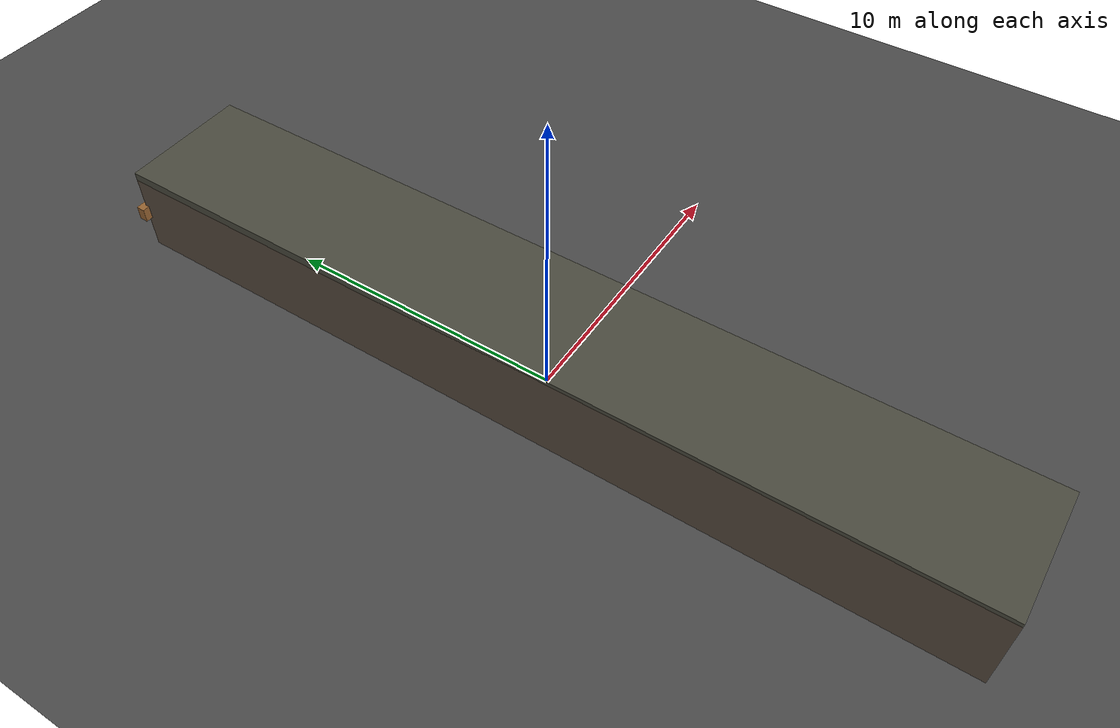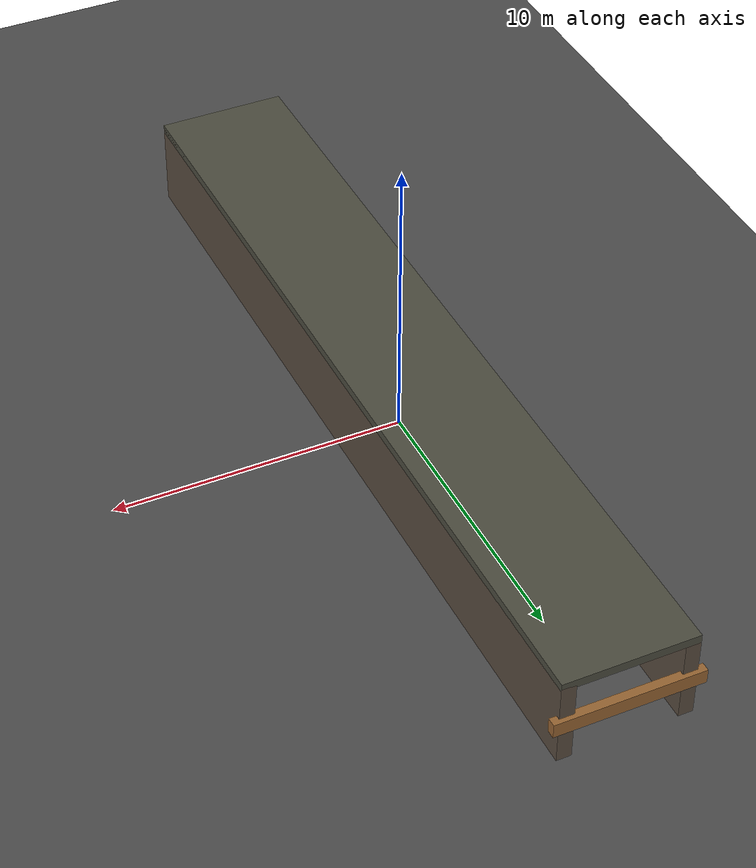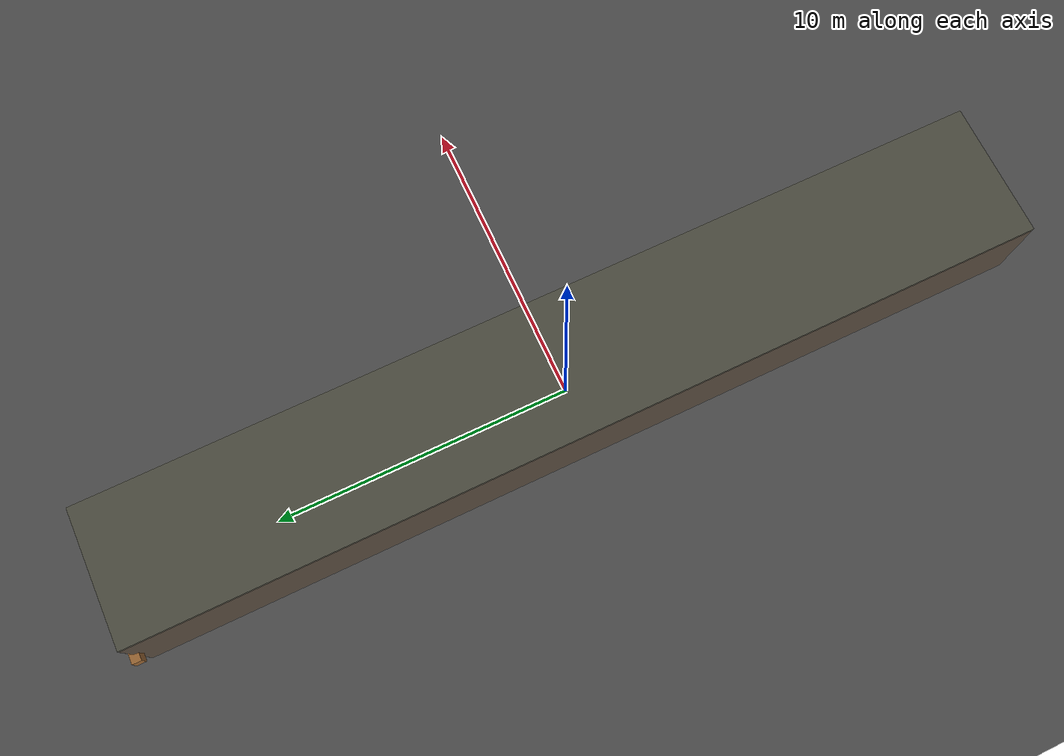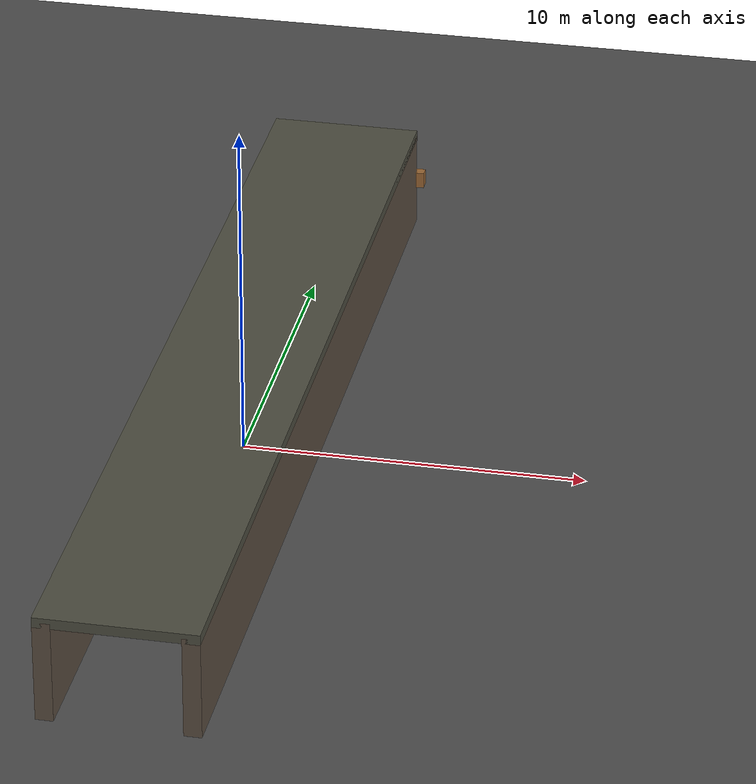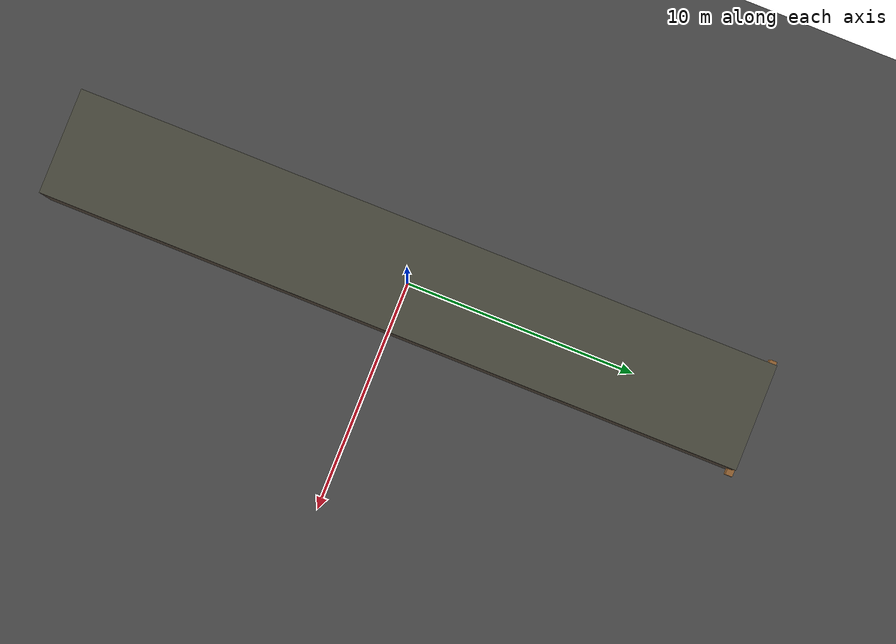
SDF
<?xml version="1.0" ?>
<sdf version="1.7">
  <world name="andino_tunnel">
    <physics name="default" type="ode">
      <gravity>0 0 -9.81</gravity>
      <real_time_update_rate>250</real_time_update_rate>
      <max_step_size>0.004</max_step_size>
    </physics>

    <scene>
      <ambient>0.15 0.15 0.18 1</ambient>
      <background>0.1 0.1 0.15 1</background>
      <shadows>true</shadows>
    </scene>

    <!-- Dim directional light (simulating underground) -->
    <light name="sun" type="directional">
      <cast_shadows>true</cast_shadows>
      <pose>0 0 50 0 0 0</pose>
      <diffuse>0.3 0.3 0.25 1</diffuse>
      <specular>0.1 0.1 0.1 1</specular>
      <direction>0 0 -1</direction>
    </light>

    <!-- Floor -->
    <model name="ground_plane">
      <static>true</static>
      <link name="link">
        <collision name="collision">
          <geometry><plane><normal>0 0 1</normal><size>100 100</size></plane></geometry>
          <surface>
            <friction>
              <ode><mu>0.9</mu><mu2>0.7</mu2></ode>
            </friction>
          </surface>
        </collision>
        <visual name="visual">
          <geometry><plane><normal>0 0 1</normal><size>100 100</size></plane></geometry>
          <material><ambient>0.25 0.25 0.25 1</ambient><diffuse>0.3 0.3 0.3 1</diffuse></material>
        </visual>
      </link>
    </model>

    <!-- Tunnel walls — two parallel walls 4m apart, 30m long -->
    <model name="tunnel_wall_left">
      <static>true</static>
      <pose>-2 0 1.5 0 0 0</pose>
      <link name="wall">
        <collision name="collision">
          <geometry><box><size>0.5 30 3</size></box></geometry>
        </collision>
        <visual name="visual">
          <geometry><box><size>0.5 30 3</size></box></geometry>
          <material><ambient>0.3 0.25 0.2 1</ambient><diffuse>0.35 0.3 0.25 1</diffuse></material>
        </visual>
      </link>
    </model>
    <model name="tunnel_wall_right">
      <static>true</static>
      <pose>2 0 1.5 0 0 0</pose>
      <link name="wall">
        <collision name="collision">
          <geometry><box><size>0.5 30 3</size></box></geometry>
        </collision>
        <visual name="visual">
          <geometry><box><size>0.5 30 3</size></box></geometry>
          <material><ambient>0.3 0.25 0.2 1</ambient><diffuse>0.35 0.3 0.25 1</diffuse></material>
        </visual>
      </link>
    </model>

    <!-- Tunnel ceiling -->
    <model name="tunnel_ceiling">
      <static>true</static>
      <pose>0 0 3 0 0 0</pose>
      <link name="ceiling">
        <collision name="collision">
          <geometry><box><size>4.5 30 0.3</size></box></geometry>
        </collision>
        <visual name="visual">
          <geometry><box><size>4.5 30 0.3</size></box></geometry>
          <material><ambient>0.25 0.25 0.22 1</ambient><diffuse>0.3 0.3 0.25 1</diffuse></material>
        </visual>
      </link>
    </model>

    <!-- Tunnel entrance arch visual -->
    <model name="tunnel_entrance">
      <static>true</static>
      <pose>0 15 1.5 0 0 0</pose>
      <link name="arch_top">
        <visual name="visual">
          <geometry><box><size>5 0.3 0.5</size></box></geometry>
          <material><ambient>0.5 0.3 0.15 1</ambient><diffuse>0.6 0.4 0.2 1</diffuse></material>
        </visual>
      </link>
    </model>

    <!-- Obstacles inside tunnel (small rocks) -->
    <model name="obstacle_a">
      <static>true</static>
      <pose>0 5 0.15 0 0 0</pose>
      <link name="rock">
        <collision name="collision">
          <geometry><sphere><radius>0.15</radius></sphere></geometry>
        </collision>
        <visual name="visual">
          <geometry><sphere><radius>0.15</radius></sphere></geometry>
          <material><ambient>0.3 0.25 0.2 1</ambient><diffuse>0.35 0.3 0.25 1</diffuse></material>
        </visual>
      </link>
    </model>
    <model name="obstacle_b">
      <static>true</static>
      <pose>0.8 -2 0.2 0 0 0</pose>
      <link name="rock">
        <collision name="collision">
          <geometry><sphere><radius>0.2</radius></sphere></geometry>
        </collision>
        <visual name="visual">
          <geometry><sphere><radius>0.2</radius></sphere></geometry>
          <material><ambient>0.35 0.3 0.22 1</ambient><diffuse>0.4 0.35 0.25 1</diffuse></material>
        </visual>
      </link>
    </model>
    <model name="obstacle_c">
      <static>true</static>
      <pose>-0.5 -8 0.1 0 0 0</pose>
      <link name="rock">
        <collision name="collision">
          <geometry><sphere><radius>0.1</radius></sphere></geometry>
        </collision>
        <visual name="visual">
          <geometry><sphere><radius>0.1</radius></sphere></geometry>
          <material><ambient>0.3 0.28 0.2 1</ambient><diffuse>0.35 0.3 0.25 1</diffuse></material>
        </visual>
      </link>
    </model>

    <!-- Airflow simulation (mine ventilation) -->
    <wind>
      <linear_velocity>0.5 0 0</linear_velocity>
    </wind>
  </world>
</sdf>
